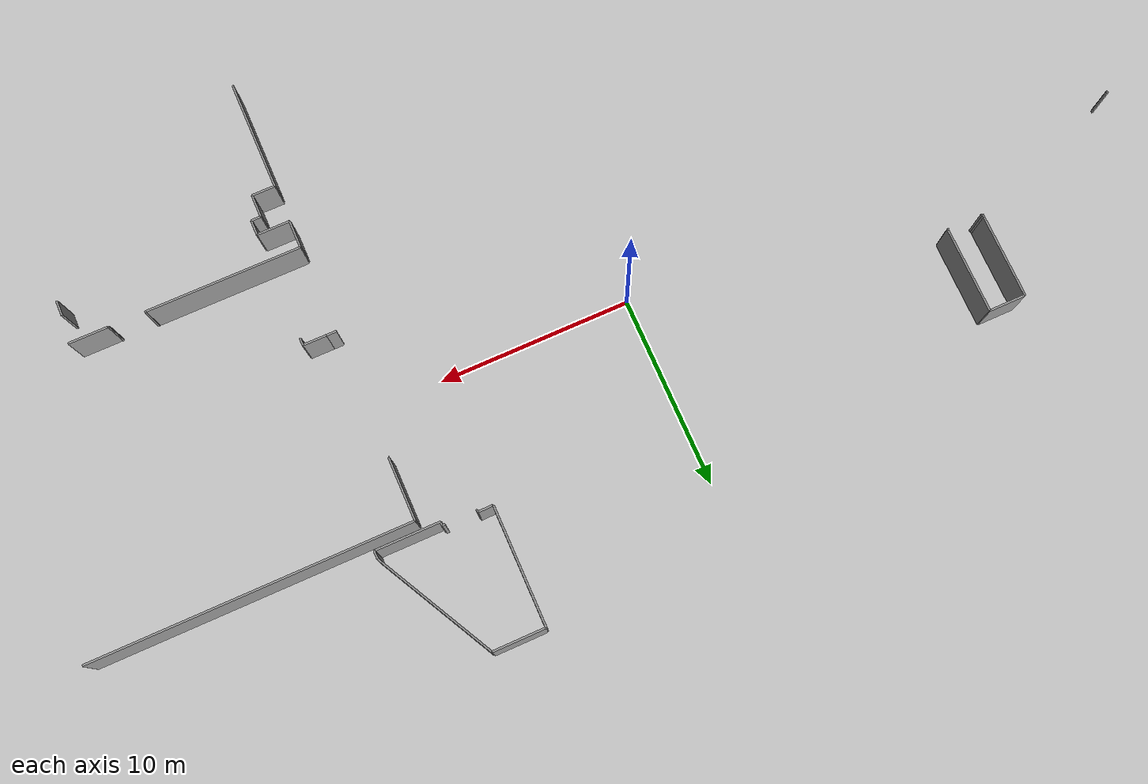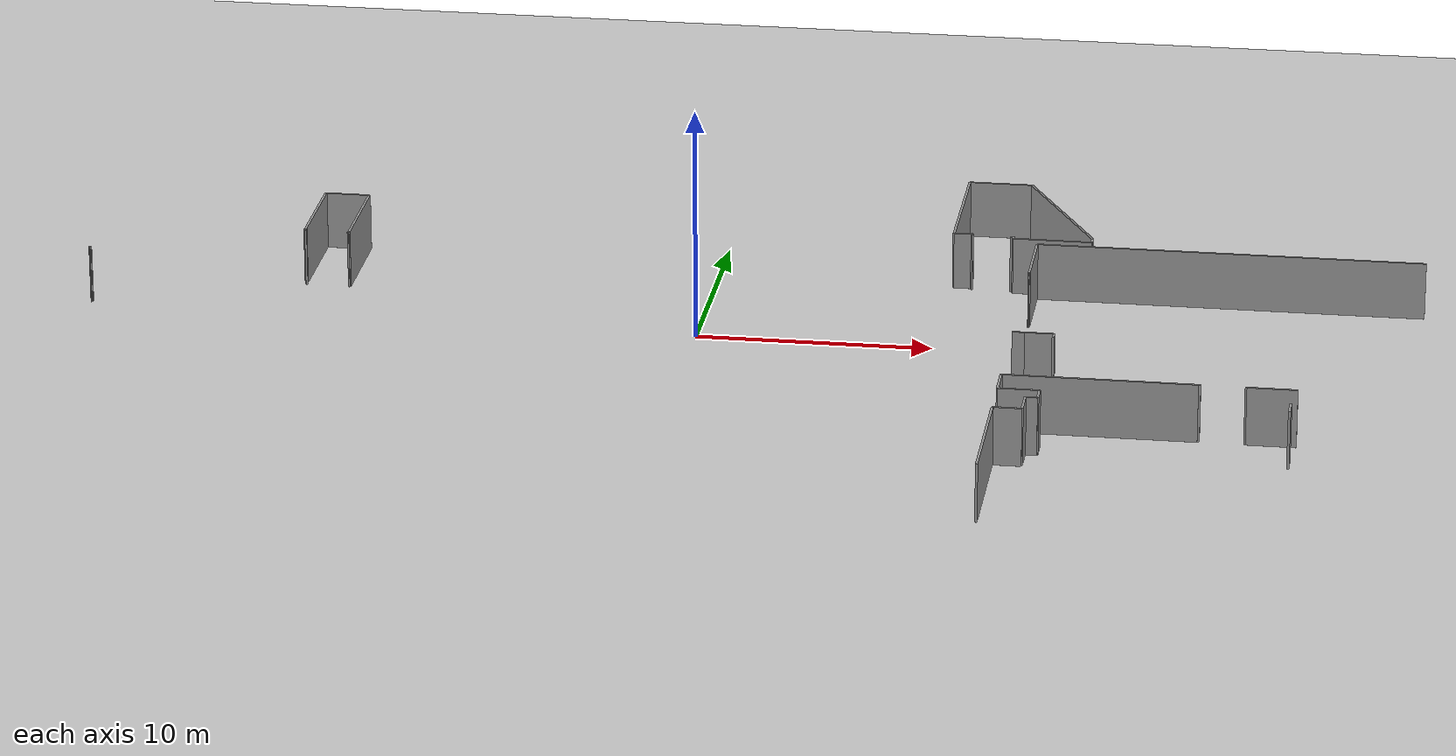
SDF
<sdf version="1.6">
 <world name="default">
  <model name="ground_plane">
   <static>1</static>
   <link name="link">
    <collision name="collision">
     <geometry><plane><normal>0 0 1</normal><size>100 100</size></plane></geometry>
     <surface><friction><ode><mu>100</mu><mu2>50</mu2></ode></friction></surface>
    </collision>
    <visual name="visual">
     <cast_shadows>0</cast_shadows>
     <geometry><plane><normal>0 0 1</normal><size>100 100</size></plane></geometry>
     <material>
      <script><uri>file://media/materials/scripts/gazebo.material</uri><name>Gazebo/Grey</name></script>
     </material>
    </visual>
   </link>
  </model>
  <model name="0510030939_A_40_1_103">
   <static>1</static>
   <link name="Wall_113">
    <collision name="Wall_113_Collision">
     <geometry><box><size>0.0955618388029 0.1 2.5</size></box></geometry>
     <pose>0.0477809194015 0 1.25 0 0 0</pose>
    </collision>
    <visual name="Wall_113_Visual">
     <pose>0.0477809194015 0 1.25 0 0 0</pose>
     <geometry><box><size>0.0955618388029 0.1 2.5</size></box></geometry>
     <material>
      <script><uri>file://media/materials/scripts/gazebo.material</uri><name>Gazebo/Grey</name></script>
      <ambient>1 1 1 1</ambient>
     </material>
    </visual>
    <pose>31.5635289259 -17.2148552912 0 0 0 -1.57079632679</pose>
   </link>
   <link name="Wall_114">
    <collision name="Wall_114_Collision">
     <geometry><box><size>0.0306255361057 0.1 2.5</size></box></geometry>
     <pose>0.0153127680529 0 1.25 0 0 0</pose>
    </collision>
    <visual name="Wall_114_Visual">
     <pose>0.0153127680529 0 1.25 0 0 0</pose>
     <geometry><box><size>0.0306255361057 0.1 2.5</size></box></geometry>
     <material>
      <script><uri>file://media/materials/scripts/gazebo.material</uri><name>Gazebo/Grey</name></script>
      <ambient>1 1 1 1</ambient>
     </material>
    </visual>
    <pose>31.5635289259 -17.31041713 0 0 0 3.14159265359</pose>
   </link>
   <link name="Wall_117">
    <collision name="Wall_117_Collision">
     <geometry><box><size>4.33281443594 0.1 2.5</size></box></geometry>
     <pose>2.16640721797 0 1.25 0 0 0</pose>
    </collision>
    <visual name="Wall_117_Visual">
     <pose>2.16640721797 0 1.25 0 0 0</pose>
     <geometry><box><size>4.33281443594 0.1 2.5</size></box></geometry>
     <material>
      <script><uri>file://media/materials/scripts/gazebo.material</uri><name>Gazebo/Grey</name></script>
      <ambient>1 1 1 1</ambient>
     </material>
    </visual>
    <pose>40.1992947231 -13.8999269308 0 0 0 1.57079632679</pose>
   </link>
   <link name="Wall_118">
    <collision name="Wall_118_Collision">
     <geometry><box><size>1.91009308384 0.1 2.5</size></box></geometry>
     <pose>0.955046541919 0 1.25 0 0 0</pose>
    </collision>
    <visual name="Wall_118_Visual">
     <pose>0.955046541919 0 1.25 0 0 0</pose>
     <geometry><box><size>1.91009308384 0.1 2.5</size></box></geometry>
     <material>
      <script><uri>file://media/materials/scripts/gazebo.material</uri><name>Gazebo/Grey</name></script>
      <ambient>1 1 1 1</ambient>
     </material>
    </visual>
    <pose>40.1992947231 -9.56711249484 0 0 0 0.0</pose>
   </link>
   <link name="Wall_119">
    <collision name="Wall_119_Collision">
     <geometry><box><size>4.49725196175 0.1 2.5</size></box></geometry>
     <pose>2.24862598087 0 1.25 0 0 0</pose>
    </collision>
    <visual name="Wall_119_Visual">
     <pose>2.24862598087 0 1.25 0 0 0</pose>
     <geometry><box><size>4.49725196175 0.1 2.5</size></box></geometry>
     <material>
      <script><uri>file://media/materials/scripts/gazebo.material</uri><name>Gazebo/Grey</name></script>
      <ambient>1 1 1 1</ambient>
     </material>
    </visual>
    <pose>42.109387807 -9.56711249484 0 0 0 -1.57079632679</pose>
   </link>
   <link name="Wall_120">
    <collision name="Wall_120_Collision">
     <geometry><box><size>0.0649363026972 0.1 2.5</size></box></geometry>
     <pose>0.0324681513486 0 1.25 0 0 0</pose>
    </collision>
    <visual name="Wall_120_Visual">
     <pose>0.0324681513486 0 1.25 0 0 0</pose>
     <geometry><box><size>0.0649363026972 0.1 2.5</size></box></geometry>
     <material>
      <script><uri>file://media/materials/scripts/gazebo.material</uri><name>Gazebo/Grey</name></script>
      <ambient>1 1 1 1</ambient>
     </material>
    </visual>
    <pose>42.109387807 -14.0643644566 0 0 0 3.14159265359</pose>
   </link>
   <link name="Wall_121">
    <collision name="Wall_121_Collision">
     <geometry><box><size>0.0819646090796 0.1 2.5</size></box></geometry>
     <pose>0.0409823045398 0 1.25 0 0 0</pose>
    </collision>
    <visual name="Wall_121_Visual">
     <pose>0.0409823045398 0 1.25 0 0 0</pose>
     <geometry><box><size>0.0819646090796 0.1 2.5</size></box></geometry>
     <material>
      <script><uri>file://media/materials/scripts/gazebo.material</uri><name>Gazebo/Grey</name></script>
      <ambient>1 1 1 1</ambient>
     </material>
    </visual>
    <pose>40.2761762557 -14.0643644566 0 0 0 3.14159265359</pose>
   </link>
   <link name="Wall_122">
    <collision name="Wall_122_Collision">
     <geometry><box><size>0.164516070833 0.1 2.5</size></box></geometry>
     <pose>0.0822580354166 0 1.25 0 0 0</pose>
    </collision>
    <visual name="Wall_122_Visual">
     <pose>0.0822580354166 0 1.25 0 0 0</pose>
     <geometry><box><size>0.164516070833 0.1 2.5</size></box></geometry>
     <material>
      <script><uri>file://media/materials/scripts/gazebo.material</uri><name>Gazebo/Grey</name></script>
      <ambient>1 1 1 1</ambient>
     </material>
    </visual>
    <pose>40.1942116466 -14.0643644566 0 0 0 1.53989426598</pose>
   </link>
   <link name="Wall_123">
    <collision name="Wall_123_Collision">
     <geometry><box><size>6.22803952092 0.1 2.5</size></box></geometry>
     <pose>3.11401976046 0 1.25 0 0 0</pose>
    </collision>
    <visual name="Wall_123_Visual">
     <pose>3.11401976046 0 1.25 0 0 0</pose>
     <geometry><box><size>6.22803952092 0.1 2.5</size></box></geometry>
     <material>
      <script><uri>file://media/materials/scripts/gazebo.material</uri><name>Gazebo/Grey</name></script>
      <ambient>1 1 1 1</ambient>
     </material>
    </visual>
    <pose>67.7458842965 -10.5748324173 0 0 0 1.57079632679</pose>
   </link>
   <link name="Wall_124">
    <collision name="Wall_124_Collision">
     <geometry><box><size>2.72097086762 0.1 2.5</size></box></geometry>
     <pose>1.36048543381 0 1.25 0 0 0</pose>
    </collision>
    <visual name="Wall_124_Visual">
     <pose>1.36048543381 0 1.25 0 0 0</pose>
     <geometry><box><size>2.72097086762 0.1 2.5</size></box></geometry>
     <material>
      <script><uri>file://media/materials/scripts/gazebo.material</uri><name>Gazebo/Grey</name></script>
      <ambient>1 1 1 1</ambient>
     </material>
    </visual>
    <pose>67.7458842965 -4.3467928964 0 0 0 0.0</pose>
   </link>
   <link name="Wall_125">
    <collision name="Wall_125_Collision">
     <geometry><box><size>6.87257748458 0.1 2.5</size></box></geometry>
     <pose>3.43628874229 0 1.25 0 0 0</pose>
    </collision>
    <visual name="Wall_125_Visual">
     <pose>3.43628874229 0 1.25 0 0 0</pose>
     <geometry><box><size>6.87257748458 0.1 2.5</size></box></geometry>
     <material>
      <script><uri>file://media/materials/scripts/gazebo.material</uri><name>Gazebo/Grey</name></script>
      <ambient>1 1 1 1</ambient>
     </material>
    </visual>
    <pose>70.4668551641 -4.3467928964 0 0 0 -1.08718561135</pose>
   </link>
   <link name="Wall_126">
    <collision name="Wall_126_Collision">
     <geometry><box><size>0.417447660196 0.1 2.5</size></box></geometry>
     <pose>0.208723830098 0 1.25 0 0 0</pose>
    </collision>
    <visual name="Wall_126_Visual">
     <pose>0.208723830098 0 1.25 0 0 0</pose>
     <geometry><box><size>0.417447660196 0.1 2.5</size></box></geometry>
     <material>
      <script><uri>file://media/materials/scripts/gazebo.material</uri><name>Gazebo/Grey</name></script>
      <ambient>1 1 1 1</ambient>
     </material>
    </visual>
    <pose>73.6624583029 -10.4312355053 0 0 0 -1.57079632679</pose>
   </link>
   <link name="Wall_127">
    <collision name="Wall_127_Collision">
     <geometry><box><size>3.34923912698 0.1 2.5</size></box></geometry>
     <pose>1.67461956349 0 1.25 0 0 0</pose>
    </collision>
    <visual name="Wall_127_Visual">
     <pose>1.67461956349 0 1.25 0 0 0</pose>
     <geometry><box><size>3.34923912698 0.1 2.5</size></box></geometry>
     <material>
      <script><uri>file://media/materials/scripts/gazebo.material</uri><name>Gazebo/Grey</name></script>
      <ambient>1 1 1 1</ambient>
     </material>
    </visual>
    <pose>73.6624583029 -10.8486831655 0 0 0 3.14159265359</pose>
   </link>
   <link name="Wall_128">
    <collision name="Wall_128_Collision">
     <geometry><box><size>0.191759062172 0.1 2.5</size></box></geometry>
     <pose>0.0958795310862 0 1.25 0 0 0</pose>
    </collision>
    <visual name="Wall_128_Visual">
     <pose>0.0958795310862 0 1.25 0 0 0</pose>
     <geometry><box><size>0.191759062172 0.1 2.5</size></box></geometry>
     <material>
      <script><uri>file://media/materials/scripts/gazebo.material</uri><name>Gazebo/Grey</name></script>
      <ambient>1 1 1 1</ambient>
     </material>
    </visual>
    <pose>70.3132191759 -10.8486831655 0 0 0 1.57079632679</pose>
   </link>
   <link name="Wall_129">
    <collision name="Wall_129_Collision">
     <geometry><box><size>0.147663373257 0.1 2.5</size></box></geometry>
     <pose>0.0738316866283 0 1.25 0 0 0</pose>
    </collision>
    <visual name="Wall_129_Visual">
     <pose>0.0738316866283 0 1.25 0 0 0</pose>
     <geometry><box><size>0.147663373257 0.1 2.5</size></box></geometry>
     <material>
      <script><uri>file://media/materials/scripts/gazebo.material</uri><name>Gazebo/Grey</name></script>
      <ambient>1 1 1 1</ambient>
     </material>
    </visual>
    <pose>70.3132191759 -10.6569241033 0 0 0 3.14159265359</pose>
   </link>
   <link name="Wall_130">
    <collision name="Wall_130_Collision">
     <geometry><box><size>0.068621533183 0.1 2.5</size></box></geometry>
     <pose>0.0343107665915 0 1.25 0 0 0</pose>
    </collision>
    <visual name="Wall_130_Visual">
     <pose>0.0343107665915 0 1.25 0 0 0</pose>
     <geometry><box><size>0.068621533183 0.1 2.5</size></box></geometry>
     <material>
      <script><uri>file://media/materials/scripts/gazebo.material</uri><name>Gazebo/Grey</name></script>
      <ambient>1 1 1 1</ambient>
     </material>
    </visual>
    <pose>68.5913270007 -10.6569241033 0 0 0 3.14159265359</pose>
   </link>
   <link name="Wall_131">
    <collision name="Wall_131_Collision">
     <geometry><box><size>0.096451377196 0.1 2.5</size></box></geometry>
     <pose>0.048225688598 0 1.25 0 0 0</pose>
    </collision>
    <visual name="Wall_131_Visual">
     <pose>0.048225688598 0 1.25 0 0 0</pose>
     <geometry><box><size>0.096451377196 0.1 2.5</size></box></geometry>
     <material>
      <script><uri>file://media/materials/scripts/gazebo.material</uri><name>Gazebo/Grey</name></script>
      <ambient>1 1 1 1</ambient>
     </material>
    </visual>
    <pose>68.5227054675 -10.6569241033 0 0 0 1.57079632679</pose>
   </link>
   <link name="Wall_132">
    <collision name="Wall_132_Collision">
     <geometry><box><size>0.776953880527 0.1 2.5</size></box></geometry>
     <pose>0.388476940264 0 1.25 0 0 0</pose>
    </collision>
    <visual name="Wall_132_Visual">
     <pose>0.388476940264 0 1.25 0 0 0</pose>
     <geometry><box><size>0.776953880527 0.1 2.5</size></box></geometry>
     <material>
      <script><uri>file://media/materials/scripts/gazebo.material</uri><name>Gazebo/Grey</name></script>
      <ambient>1 1 1 1</ambient>
     </material>
    </visual>
    <pose>68.5227054675 -10.5604727261 0 0 0 -3.12310956315</pose>
   </link>
   <link name="Wall_133">
    <collision name="Wall_133_Collision">
     <geometry><box><size>0.520125806144 0.1 2.5</size></box></geometry>
     <pose>0.260062903072 0 1.25 0 0 0</pose>
    </collision>
    <visual name="Wall_133_Visual">
     <pose>0.260062903072 0 1.25 0 0 0</pose>
     <geometry><box><size>0.520125806144 0.1 2.5</size></box></geometry>
     <material>
      <script><uri>file://media/materials/scripts/gazebo.material</uri><name>Gazebo/Grey</name></script>
      <ambient>1 1 1 1</ambient>
     </material>
    </visual>
    <pose>71.8641929028 -21.3958128157 0 0 0 3.14159265359</pose>
   </link>
   <link name="Wall_134">
    <collision name="Wall_134_Collision">
     <geometry><box><size>0.0386313816437 0.1 2.5</size></box></geometry>
     <pose>0.0193156908219 0 1.25 0 0 0</pose>
    </collision>
    <visual name="Wall_134_Visual">
     <pose>0.0193156908219 0 1.25 0 0 0</pose>
     <geometry><box><size>0.0386313816437 0.1 2.5</size></box></geometry>
     <material>
      <script><uri>file://media/materials/scripts/gazebo.material</uri><name>Gazebo/Grey</name></script>
      <ambient>1 1 1 1</ambient>
     </material>
    </visual>
    <pose>71.3440670966 -14.6613717953 0 0 0 0.0</pose>
   </link>
   <link name="Wall_135">
    <collision name="Wall_135_Collision">
     <geometry><box><size>3.28519236268 0.1 2.5</size></box></geometry>
     <pose>1.64259618134 0 1.25 0 0 0</pose>
    </collision>
    <visual name="Wall_135_Visual">
     <pose>1.64259618134 0 1.25 0 0 0</pose>
     <geometry><box><size>3.28519236268 0.1 2.5</size></box></geometry>
     <material>
      <script><uri>file://media/materials/scripts/gazebo.material</uri><name>Gazebo/Grey</name></script>
      <ambient>1 1 1 1</ambient>
     </material>
    </visual>
    <pose>71.3826984783 -14.6613717953 0 0 0 1.57079632679</pose>
   </link>
   <link name="Wall_136">
    <collision name="Wall_136_Collision">
     <geometry><box><size>16.4989039616 0.1 2.5</size></box></geometry>
     <pose>8.24945198081 0 1.25 0 0 0</pose>
    </collision>
    <visual name="Wall_136_Visual">
     <pose>8.24945198081 0 1.25 0 0 0</pose>
     <geometry><box><size>16.4989039616 0.1 2.5</size></box></geometry>
     <material>
      <script><uri>file://media/materials/scripts/gazebo.material</uri><name>Gazebo/Grey</name></script>
      <ambient>1 1 1 1</ambient>
     </material>
    </visual>
    <pose>71.3826984783 -11.3761794326 0 0 0 0.0</pose>
   </link>
   <link name="Wall_143">
    <collision name="Wall_143_Collision">
     <geometry><box><size>0.391269816056 0.1 2.5</size></box></geometry>
     <pose>0.195634908028 0 1.25 0 0 0</pose>
    </collision>
    <visual name="Wall_143_Visual">
     <pose>0.195634908028 0 1.25 0 0 0</pose>
     <geometry><box><size>0.391269816056 0.1 2.5</size></box></geometry>
     <material>
      <script><uri>file://media/materials/scripts/gazebo.material</uri><name>Gazebo/Grey</name></script>
      <ambient>1 1 1 1</ambient>
     </material>
    </visual>
    <pose>73.0765066557 -21.7902595546 0 0 0 1.57079632679</pose>
   </link>
   <link name="Wall_144">
    <collision name="Wall_144_Collision">
     <geometry><box><size>1.21231791553 0.1 2.5</size></box></geometry>
     <pose>0.606158957763 0 1.25 0 0 0</pose>
    </collision>
    <visual name="Wall_144_Visual">
     <pose>0.606158957763 0 1.25 0 0 0</pose>
     <geometry><box><size>1.21231791553 0.1 2.5</size></box></geometry>
     <material>
      <script><uri>file://media/materials/scripts/gazebo.material</uri><name>Gazebo/Grey</name></script>
      <ambient>1 1 1 1</ambient>
     </material>
    </visual>
    <pose>73.0765066557 -21.3989897385 0 0 0 3.13897211452</pose>
   </link>
   <link name="Wall_145">
    <collision name="Wall_145_Collision">
     <geometry><box><size>5.8141500143 0.1 2.5</size></box></geometry>
     <pose>2.90707500715 0 1.25 0 0 0</pose>
    </collision>
    <visual name="Wall_145_Visual">
     <pose>2.90707500715 0 1.25 0 0 0</pose>
     <geometry><box><size>5.8141500143 0.1 2.5</size></box></geometry>
     <material>
      <script><uri>file://media/materials/scripts/gazebo.material</uri><name>Gazebo/Grey</name></script>
      <ambient>1 1 1 1</ambient>
     </material>
    </visual>
    <pose>71.3823172475 -35.2981542078 0 0 0 1.57079632679</pose>
   </link>
   <link name="Wall_146">
    <collision name="Wall_146_Collision">
     <geometry><box><size>1.19782698478 0.1 2.5</size></box></geometry>
     <pose>0.598913492391 0 1.25 0 0 0</pose>
    </collision>
    <visual name="Wall_146_Visual">
     <pose>0.598913492391 0 1.25 0 0 0</pose>
     <geometry><box><size>1.19782698478 0.1 2.5</size></box></geometry>
     <material>
      <script><uri>file://media/materials/scripts/gazebo.material</uri><name>Gazebo/Grey</name></script>
      <ambient>1 1 1 1</ambient>
     </material>
    </visual>
    <pose>71.3823172475 -29.4840041935 0 0 0 0.0</pose>
   </link>
   <link name="Wall_147">
    <collision name="Wall_147_Collision">
     <geometry><box><size>1.20367252279 0.1 2.5</size></box></geometry>
     <pose>0.601836261397 0 1.25 0 0 0</pose>
    </collision>
    <visual name="Wall_147_Visual">
     <pose>0.601836261397 0 1.25 0 0 0</pose>
     <geometry><box><size>1.20367252279 0.1 2.5</size></box></geometry>
     <material>
      <script><uri>file://media/materials/scripts/gazebo.material</uri><name>Gazebo/Grey</name></script>
      <ambient>1 1 1 1</ambient>
     </material>
    </visual>
    <pose>72.5801442323 -29.4840041935 0 0 0 1.57079632679</pose>
   </link>
   <link name="Wall_148">
    <collision name="Wall_148_Collision">
     <geometry><box><size>0.502843345935 0.1 2.5</size></box></geometry>
     <pose>0.251421672968 0 1.25 0 0 0</pose>
    </collision>
    <visual name="Wall_148_Visual">
     <pose>0.251421672968 0 1.25 0 0 0</pose>
     <geometry><box><size>0.502843345935 0.1 2.5</size></box></geometry>
     <material>
      <script><uri>file://media/materials/scripts/gazebo.material</uri><name>Gazebo/Grey</name></script>
      <ambient>1 1 1 1</ambient>
     </material>
    </visual>
    <pose>72.5801442323 -28.2803316707 0 0 0 0.0</pose>
   </link>
   <link name="Wall_149">
    <collision name="Wall_149_Collision">
     <geometry><box><size>0.788258093211 0.1 2.5</size></box></geometry>
     <pose>0.394129046605 0 1.25 0 0 0</pose>
    </collision>
    <visual name="Wall_149_Visual">
     <pose>0.394129046605 0 1.25 0 0 0</pose>
     <geometry><box><size>0.788258093211 0.1 2.5</size></box></geometry>
     <material>
      <script><uri>file://media/materials/scripts/gazebo.material</uri><name>Gazebo/Grey</name></script>
      <ambient>1 1 1 1</ambient>
     </material>
    </visual>
    <pose>73.0829875782 -28.2803316707 0 0 0 1.57079632679</pose>
   </link>
   <link name="Wall_150">
    <collision name="Wall_150_Collision">
     <geometry><box><size>1.70295771516 0.1 2.5</size></box></geometry>
     <pose>0.851478857579 0 1.25 0 0 0</pose>
    </collision>
    <visual name="Wall_150_Visual">
     <pose>0.851478857579 0 1.25 0 0 0</pose>
     <geometry><box><size>1.70295771516 0.1 2.5</size></box></geometry>
     <material>
      <script><uri>file://media/materials/scripts/gazebo.material</uri><name>Gazebo/Grey</name></script>
      <ambient>1 1 1 1</ambient>
     </material>
    </visual>
    <pose>73.0829875782 -27.4920735775 0 0 0 3.14159265359</pose>
   </link>
   <link name="Wall_151">
    <collision name="Wall_151_Collision">
     <geometry><box><size>1.45706388792 0.1 2.5</size></box></geometry>
     <pose>0.728531943959 0 1.25 0 0 0</pose>
    </collision>
    <visual name="Wall_151_Visual">
     <pose>0.728531943959 0 1.25 0 0 0</pose>
     <geometry><box><size>1.45706388792 0.1 2.5</size></box></geometry>
     <material>
      <script><uri>file://media/materials/scripts/gazebo.material</uri><name>Gazebo/Grey</name></script>
      <ambient>1 1 1 1</ambient>
     </material>
    </visual>
    <pose>71.3800298631 -27.4920735775 0 0 0 1.57079632679</pose>
   </link>
   <link name="Wall_152">
    <collision name="Wall_152_Collision">
     <geometry><box><size>7.99059630842 0.1 2.5</size></box></geometry>
     <pose>3.99529815421 0 1.25 0 0 0</pose>
    </collision>
    <visual name="Wall_152_Visual">
     <pose>3.99529815421 0 1.25 0 0 0</pose>
     <geometry><box><size>7.99059630842 0.1 2.5</size></box></geometry>
     <material>
      <script><uri>file://media/materials/scripts/gazebo.material</uri><name>Gazebo/Grey</name></script>
      <ambient>1 1 1 1</ambient>
     </material>
    </visual>
    <pose>71.3800298631 -26.0350096896 0 0 0 0.0</pose>
   </link>
   <link name="Wall_153">
    <collision name="Wall_153_Collision">
     <geometry><box><size>0.0139784604632 0.1 2.5</size></box></geometry>
     <pose>0.0069892302316 0 1.25 0 0 0</pose>
    </collision>
    <visual name="Wall_153_Visual">
     <pose>0.0069892302316 0 1.25 0 0 0</pose>
     <geometry><box><size>0.0139784604632 0.1 2.5</size></box></geometry>
     <material>
      <script><uri>file://media/materials/scripts/gazebo.material</uri><name>Gazebo/Grey</name></script>
      <ambient>1 1 1 1</ambient>
     </material>
    </visual>
    <pose>79.3706261715 -26.0350096896 0 0 0 1.57079632679</pose>
   </link>
   <link name="Wall_154">
    <collision name="Wall_154_Collision">
     <geometry><box><size>0.0903516853576 0.1 2.5</size></box></geometry>
     <pose>0.0451758426788 0 1.25 0 0 0</pose>
    </collision>
    <visual name="Wall_154_Visual">
     <pose>0.0451758426788 0 1.25 0 0 0</pose>
     <geometry><box><size>0.0903516853576 0.1 2.5</size></box></geometry>
     <material>
      <script><uri>file://media/materials/scripts/gazebo.material</uri><name>Gazebo/Grey</name></script>
      <ambient>1 1 1 1</ambient>
     </material>
    </visual>
    <pose>79.3706261715 -26.0210312292 0 0 0 0.0</pose>
   </link>
   <link name="Wall_155">
    <collision name="Wall_155_Collision">
     <geometry><box><size>0.0723067636687 0.1 2.5</size></box></geometry>
     <pose>0.0361533818344 0 1.25 0 0 0</pose>
    </collision>
    <visual name="Wall_155_Visual">
     <pose>0.0361533818344 0 1.25 0 0 0</pose>
     <geometry><box><size>0.0723067636687 0.1 2.5</size></box></geometry>
     <material>
      <script><uri>file://media/materials/scripts/gazebo.material</uri><name>Gazebo/Grey</name></script>
      <ambient>1 1 1 1</ambient>
     </material>
    </visual>
    <pose>81.2452647965 -26.0210312292 0 0 0 0.0</pose>
   </link>
   <link name="Wall_156">
    <collision name="Wall_156_Collision">
     <geometry><box><size>0.0218572290879 0.1 2.5</size></box></geometry>
     <pose>0.010928614544 0 1.25 0 0 0</pose>
    </collision>
    <visual name="Wall_156_Visual">
     <pose>0.010928614544 0 1.25 0 0 0</pose>
     <geometry><box><size>0.0218572290879 0.1 2.5</size></box></geometry>
     <material>
      <script><uri>file://media/materials/scripts/gazebo.material</uri><name>Gazebo/Grey</name></script>
      <ambient>1 1 1 1</ambient>
     </material>
    </visual>
    <pose>81.3175715602 -26.0210312292 0 0 0 -1.57079632679</pose>
   </link>
   <link name="Wall_157">
    <collision name="Wall_157_Collision">
     <geometry><box><size>2.05597738031 0.1 2.5</size></box></geometry>
     <pose>1.02798869015 0 1.25 0 0 0</pose>
    </collision>
    <visual name="Wall_157_Visual">
     <pose>1.02798869015 0 1.25 0 0 0</pose>
     <geometry><box><size>2.05597738031 0.1 2.5</size></box></geometry>
     <material>
      <script><uri>file://media/materials/scripts/gazebo.material</uri><name>Gazebo/Grey</name></script>
      <ambient>1 1 1 1</ambient>
     </material>
    </visual>
    <pose>81.3175715602 -26.0428884582 0 0 0 0.0</pose>
   </link>
   <link name="Wall_160">
    <collision name="Wall_160_Collision">
     <geometry><box><size>0.787495631731 0.1 2.5</size></box></geometry>
     <pose>0.393747815866 0 1.25 0 0 0</pose>
    </collision>
    <visual name="Wall_160_Visual">
     <pose>0.393747815866 0 1.25 0 0 0</pose>
     <geometry><box><size>0.787495631731 0.1 2.5</size></box></geometry>
     <material>
      <script><uri>file://media/materials/scripts/gazebo.material</uri><name>Gazebo/Grey</name></script>
      <ambient>1 1 1 1</ambient>
     </material>
    </visual>
    <pose>83.1670489564 -27.498681577 0 0 0 -1.57079632679</pose>
   </link>
   <pose>-57.65 17.6622597452 0 0 0 0</pose>
  </model>
 </world>
</sdf>
